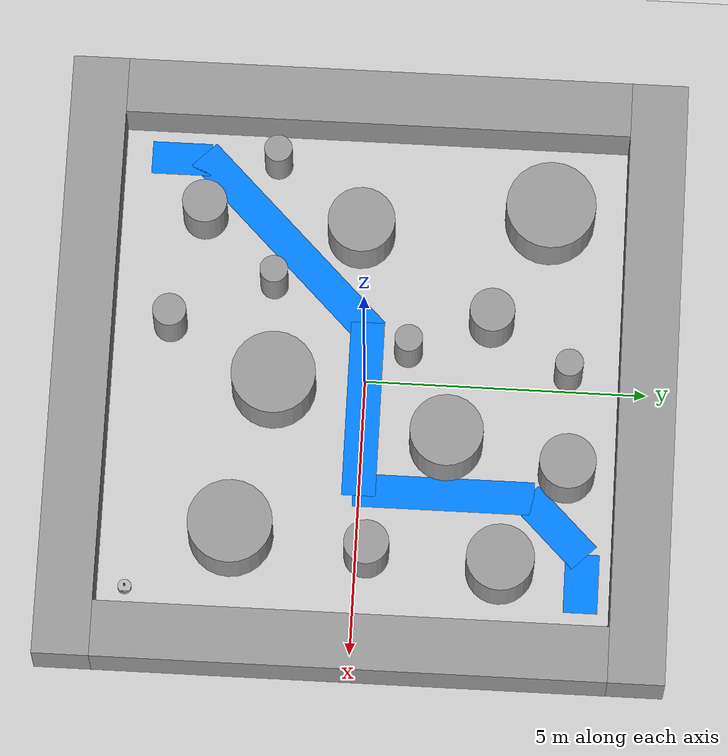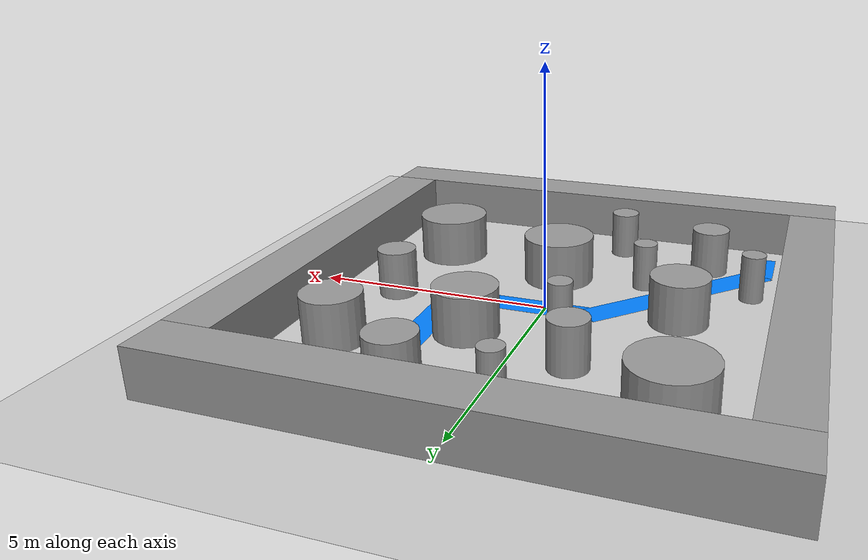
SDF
<sdf version="1.7">
 <world name="default">
  <light name="sun" type="directional">
   <pose>0 0 10 0 -0 0</pose>
   <diffuse>0.8 0.8 0.8 1</diffuse>
   <specular>0.2 0.2 0.2 1</specular>
   <attenuation>
    <range>1000</range>
    <constant>0.9</constant>
    <linear>0.01</linear>
    <quadratic>0.001</quadratic>
   </attenuation>
   <direction>-0.5 0.1 -0.9</direction>
   <spot><inner_angle>0</inner_angle><outer_angle>0</outer_angle><falloff>0</falloff></spot>
  </light>
  <model name="ground_plane">
   <static>1</static>
   <link name="link">
    <collision name="collision">
     <geometry><plane><normal>0 0 1</normal><size>100 100</size></plane></geometry>
     <surface>
      <contact><collide_bitmask>65535</collide_bitmask></contact>
      <friction><ode><mu>100</mu><mu2>50</mu2></ode></friction>
     </surface>
    </collision>
    <visual name="visual">
     <cast_shadows>0</cast_shadows>
     <geometry><plane><normal>0 0 1</normal><size>100 100</size></plane></geometry>
     <material>
      <script><uri>file://media/materials/scripts/gazebo.material</uri><name>Gazebo/Grey</name></script>
     </material>
    </visual>
   </link>
  </model>
  <model name="wall_north">
   <static>1</static>
   <pose>0 5 0.5 0 -0 0</pose>
   <link name="link">
    <collision name="collision"><geometry><box><size>11 1 1</size></box></geometry></collision>
    <visual name="visual">
     <geometry><box><size>11 1 1</size></box></geometry>
     <material>
      <script><uri>file://media/materials/scripts/gazebo.material</uri><name>Gazebo/Grey</name></script>
     </material>
    </visual>
   </link>
  </model>
  <model name="wall_south">
   <static>1</static>
   <pose>0 -5 0.5 0 -0 0</pose>
   <link name="link">
    <collision name="collision"><geometry><box><size>11 1 1</size></box></geometry></collision>
    <visual name="visual">
     <geometry><box><size>11 1 1</size></box></geometry>
     <material>
      <script><uri>file://media/materials/scripts/gazebo.material</uri><name>Gazebo/Grey</name></script>
     </material>
    </visual>
   </link>
  </model>
  <model name="wall_east">
   <static>1</static>
   <pose>5 0 0.5 0 -0 0</pose>
   <link name="link">
    <collision name="collision"><geometry><box><size>1 9 1</size></box></geometry></collision>
    <visual name="visual">
     <geometry><box><size>1 9 1</size></box></geometry>
     <material>
      <script><uri>file://media/materials/scripts/gazebo.material</uri><name>Gazebo/Grey</name></script>
     </material>
    </visual>
   </link>
  </model>
  <model name="wall_west">
   <static>1</static>
   <pose>-5 0 0.5 0 -0 0</pose>
   <link name="link">
    <collision name="collision"><geometry><box><size>1 9 1</size></box></geometry></collision>
    <visual name="visual">
     <geometry><box><size>1 9 1</size></box></geometry>
     <material>
      <script><uri>file://media/materials/scripts/gazebo.material</uri><name>Gazebo/Grey</name></script>
     </material>
    </visual>
   </link>
  </model>
  <model name="obstacle_4">
   <static>1</static>
   <pose>3.2 0.2 0.5 0 -0 0</pose>
   <link name="link">
    <visual name="visual">
     <geometry><cylinder><radius>0.4</radius><length>1</length></cylinder></geometry>
     <material>
      <script><uri>file://media/materials/scripts/gazebo.material</uri><name>Gazebo/Grey</name></script>
     </material>
    </visual>
    <collision name="collision">
     <geometry><cylinder><radius>0.4</radius><length>1</length></cylinder></geometry>
    </collision>
   </link>
  </model>
  <model name="obstacle_5">
   <static>1</static>
   <pose>0.2 -1.6 0.5 0 -0 0</pose>
   <link name="link">
    <visual name="visual">
     <geometry><cylinder><radius>0.75</radius><length>1</length></cylinder></geometry>
     <material>
      <script><uri>file://media/materials/scripts/gazebo.material</uri><name>Gazebo/Grey</name></script>
     </material>
    </visual>
    <collision name="collision">
     <geometry><cylinder><radius>0.75</radius><length>1</length></cylinder></geometry>
    </collision>
   </link>
  </model>
  <model name="obstacle_6">
   <static>1</static>
   <pose>-1.15 2.2 0.5 0 -0 0</pose>
   <link name="link">
    <visual name="visual">
     <geometry><cylinder><radius>0.4</radius><length>1</length></cylinder></geometry>
     <material>
      <script><uri>file://media/materials/scripts/gazebo.material</uri><name>Gazebo/Grey</name></script>
     </material>
    </visual>
    <collision name="collision">
     <geometry><cylinder><radius>0.4</radius><length>1</length></cylinder></geometry>
    </collision>
   </link>
  </model>
  <model name="obstacle_7">
   <static>1</static>
   <pose>-0.25 3.6 0.5 0 -0 0</pose>
   <link name="link">
    <visual name="visual">
     <geometry><cylinder><radius>0.25</radius><length>1</length></cylinder></geometry>
     <material>
      <script><uri>file://media/materials/scripts/gazebo.material</uri><name>Gazebo/Grey</name></script>
     </material>
    </visual>
    <collision name="collision">
     <geometry><cylinder><radius>0.25</radius><length>1</length></cylinder></geometry>
    </collision>
   </link>
  </model>
  <model name="obstacle_8">
   <static>1</static>
   <pose>-2.7 -0.2 0.5 0 -0 0</pose>
   <link name="link">
    <visual name="visual">
     <geometry><cylinder><radius>0.6</radius><length>1</length></cylinder></geometry>
     <material>
      <script><uri>file://media/materials/scripts/gazebo.material</uri><name>Gazebo/Grey</name></script>
     </material>
    </visual>
    <collision name="collision">
     <geometry><cylinder><radius>0.6</radius><length>1</length></cylinder></geometry>
    </collision>
   </link>
  </model>
  <model name="obstacle_9">
   <static>1</static>
   <pose>-0.85 -3.5 0.5 0 -0 0</pose>
   <link name="link">
    <visual name="visual">
     <geometry><cylinder><radius>0.3</radius><length>1</length></cylinder></geometry>
     <material>
      <script><uri>file://media/materials/scripts/gazebo.material</uri><name>Gazebo/Grey</name></script>
     </material>
    </visual>
    <collision name="collision">
     <geometry><cylinder><radius>0.3</radius><length>1</length></cylinder></geometry>
    </collision>
   </link>
  </model>
  <model name="obstacle_10">
   <static>1</static>
   <pose>1.1 1.5 0.5 0 -0 0</pose>
   <link name="link">
    <visual name="visual">
     <geometry><cylinder><radius>0.65</radius><length>1</length></cylinder></geometry>
     <material>
      <script><uri>file://media/materials/scripts/gazebo.material</uri><name>Gazebo/Grey</name></script>
     </material>
    </visual>
    <collision name="collision">
     <geometry><cylinder><radius>0.65</radius><length>1</length></cylinder></geometry>
    </collision>
   </link>
  </model>
  <model name="obstacle_11">
   <static>1</static>
   <pose>-2.9 -3 0.5 0 -0 0</pose>
   <link name="link">
    <visual name="visual">
     <geometry><cylinder><radius>0.4</radius><length>1</length></cylinder></geometry>
     <material>
      <script><uri>file://media/materials/scripts/gazebo.material</uri><name>Gazebo/Grey</name></script>
     </material>
    </visual>
    <collision name="collision">
     <geometry><cylinder><radius>0.4</radius><length>1</length></cylinder></geometry>
    </collision>
   </link>
  </model>
  <model name="obstacle_12">
   <static>1</static>
   <pose>2.95 -2.2 0.5 0 -0 0</pose>
   <link name="link">
    <visual name="visual">
     <geometry><cylinder><radius>0.75</radius><length>1</length></cylinder></geometry>
     <material>
      <script><uri>file://media/materials/scripts/gazebo.material</uri><name>Gazebo/Grey</name></script>
     </material>
    </visual>
    <collision name="collision">
     <geometry><cylinder><radius>0.75</radius><length>1</length></cylinder></geometry>
    </collision>
   </link>
  </model>
  <model name="obstacle_13">
   <static>1</static>
   <pose>-3.15 3.15 0.5 0 -0 0</pose>
   <link name="link">
    <visual name="visual">
     <geometry><cylinder><radius>0.8</radius><length>1</length></cylinder></geometry>
     <material>
      <script><uri>file://media/materials/scripts/gazebo.material</uri><name>Gazebo/Grey</name></script>
     </material>
    </visual>
    <collision name="collision">
     <geometry><cylinder><radius>0.8</radius><length>1</length></cylinder></geometry>
    </collision>
   </link>
  </model>
  <model name="obstacle_14">
   <static>1</static>
   <pose>-3.95 -1.75 0.5 0 -0 0</pose>
   <link name="link">
    <visual name="visual">
     <geometry><cylinder><radius>0.25</radius><length>1</length></cylinder></geometry>
     <material>
      <script><uri>file://media/materials/scripts/gazebo.material</uri><name>Gazebo/Grey</name></script>
     </material>
    </visual>
    <collision name="collision">
     <geometry><cylinder><radius>0.25</radius><length>1</length></cylinder></geometry>
    </collision>
   </link>
  </model>
  <model name="obstacle_15">
   <static>1</static>
   <pose>3.35 2.55 0.5 0 -0 0</pose>
   <link name="link">
    <visual name="visual">
     <geometry><cylinder><radius>0.6</radius><length>1</length></cylinder></geometry>
     <material>
      <script><uri>file://media/materials/scripts/gazebo.material</uri><name>Gazebo/Grey</name></script>
     </material>
    </visual>
    <collision name="collision">
     <geometry><cylinder><radius>0.6</radius><length>1</length></cylinder></geometry>
    </collision>
   </link>
  </model>
  <model name="obstacle_16">
   <static>1</static>
   <pose>-1.7 -1.7 0.5 0 -0 0</pose>
   <link name="link">
    <visual name="visual">
     <geometry><cylinder><radius>0.25</radius><length>1</length></cylinder></geometry>
     <material>
      <script><uri>file://media/materials/scripts/gazebo.material</uri><name>Gazebo/Grey</name></script>
     </material>
    </visual>
    <collision name="collision">
     <geometry><cylinder><radius>0.25</radius><length>1</length></cylinder></geometry>
    </collision>
   </link>
  </model>
  <model name="obstacle_17">
   <static>1</static>
   <pose>-0.55 0.75 0.5 0 -0 0</pose>
   <link name="link">
    <visual name="visual">
     <geometry><cylinder><radius>0.25</radius><length>1</length></cylinder></geometry>
     <material>
      <script><uri>file://media/materials/scripts/gazebo.material</uri><name>Gazebo/Grey</name></script>
     </material>
    </visual>
    <collision name="collision">
     <geometry><cylinder><radius>0.25</radius><length>1</length></cylinder></geometry>
    </collision>
   </link>
  </model>
  <model name="obstacle_18">
   <static>1</static>
   <pose>1.55 3.65 0.5 0 -0 0</pose>
   <link name="link">
    <visual name="visual">
     <geometry><cylinder><radius>0.5</radius><length>1</length></cylinder></geometry>
     <material>
      <script><uri>file://media/materials/scripts/gazebo.material</uri><name>Gazebo/Grey</name></script>
     </material>
    </visual>
    <collision name="collision">
     <geometry><cylinder><radius>0.5</radius><length>1</length></cylinder></geometry>
    </collision>
   </link>
  </model>
  <gravity>0 0 -9.8</gravity>
  <magnetic_field>6e-06 2.3e-05 -4.2e-05</magnetic_field>
  <atmosphere type="adiabatic"/>
  <physics type="ode">
   <max_step_size>0.001</max_step_size>
   <real_time_factor>1</real_time_factor>
   <real_time_update_rate>1000</real_time_update_rate>
  </physics>
  <scene><ambient>0.4 0.4 0.4 1</ambient><background>0.7 0.7 0.7 1</background><shadows>1</shadows></scene>
  <audio><device>default</device></audio>
  <spherical_coordinates>
   <surface_model>EARTH_WGS84</surface_model>
   <latitude_deg>0</latitude_deg>
   <longitude_deg>0</longitude_deg>
   <elevation>0</elevation>
   <heading_deg>0</heading_deg>
  </spherical_coordinates>
  <model name="fishbot">
   <link name="base_footprint">
    <inertial>
     <pose>0.000926 0 0.095565 0 -0 0</pose>
     <mass>1.08</mass>
     <inertia>
      <ixx>0.00465223</ixx>
      <ixy>0</ixy>
      <ixz>-7.04352e-05</ixz>
      <iyy>0.0048713</iyy>
      <iyz>0</iyz>
      <izz>0.00524496</izz>
     </inertia>
    </inertial>
    <collision name="base_footprint_fixed_joint_lump__base_link_collision">
     <pose>0 0 0.091 0 -0 0</pose>
     <geometry><cylinder><length>0.12</length><radius>0.12</radius></cylinder></geometry>
    </collision>
    <collision name="base_footprint_fixed_joint_lump__back_caster_link_collision_1">
     <pose>-0.08 0 0.015 0 -0 0</pose>
     <geometry><sphere><radius>0.016</radius></sphere></geometry>
     <surface>
      <contact><ode><kp>1e+09</kp><kd>1</kd></ode></contact>
      <friction><ode><mu>0</mu><mu2>0</mu2></ode></friction>
     </surface>
    </collision>
    <collision name="base_footprint_fixed_joint_lump__camera_link_collision_2">
     <pose>0.1 0 0.166 0 -0 0</pose>
     <geometry><box><size>0.02 0.1 0.02</size></box></geometry>
    </collision>
    <collision name="base_footprint_fixed_joint_lump__front_caster_link_collision_3">
     <pose>0.08 0 0.015 0 -0 0</pose>
     <geometry><sphere><radius>0.016</radius></sphere></geometry>
     <surface>
      <contact><ode><kp>1e+09</kp><kd>1</kd></ode></contact>
      <friction><ode><mu>0</mu><mu2>0</mu2></ode></friction>
     </surface>
    </collision>
    <collision name="base_footprint_fixed_joint_lump__imu_link_collision_4">
     <pose>0 0 0.111 0 -0 0</pose>
     <geometry><box><size>0.02 0.02 0.02</size></box></geometry>
    </collision>
    <collision name="base_footprint_fixed_joint_lump__laser_cylinder_link_collision_5">
     <pose>0 0 0.191 0 -0 0</pose>
     <geometry><cylinder><length>0.1</length><radius>0.01</radius></cylinder></geometry>
    </collision>
    <collision name="base_footprint_fixed_joint_lump__laser_link_collision_6">
     <pose>0 0 0.241 0 -0 0</pose>
     <geometry><cylinder><length>0.02</length><radius>0.02</radius></cylinder></geometry>
    </collision>
    <visual name="base_footprint_fixed_joint_lump__base_link_visual">
     <pose>0 0 0.091 0 -0 0</pose>
     <geometry><cylinder><length>0.12</length><radius>0.12</radius></cylinder></geometry>
    </visual>
    <visual name="base_footprint_fixed_joint_lump__back_caster_link_visual_1">
     <pose>-0.08 0 0.015 0 -0 0</pose>
     <geometry><sphere><radius>0.016</radius></sphere></geometry>
    </visual>
    <visual name="base_footprint_fixed_joint_lump__camera_link_visual_2">
     <pose>0.1 0 0.166 0 -0 0</pose>
     <geometry><box><size>0.02 0.1 0.02</size></box></geometry>
    </visual>
    <visual name="base_footprint_fixed_joint_lump__front_caster_link_visual_3">
     <pose>0.08 0 0.015 0 -0 0</pose>
     <geometry><sphere><radius>0.016</radius></sphere></geometry>
    </visual>
    <visual name="base_footprint_fixed_joint_lump__imu_link_visual_4">
     <pose>0 0 0.111 0 -0 0</pose>
     <geometry><box><size>0.02 0.02 0.02</size></box></geometry>
    </visual>
    <visual name="base_footprint_fixed_joint_lump__laser_cylinder_link_visual_5">
     <pose>0 0 0.191 0 -0 0</pose>
     <geometry><cylinder><length>0.1</length><radius>0.01</radius></cylinder></geometry>
     <material>
      <script><name>Gazebo/Black</name><uri>file://media/materials/scripts/gazebo.material</uri></script>
     </material>
    </visual>
    <visual name="base_footprint_fixed_joint_lump__laser_link_visual_6">
     <pose>0 0 0.241 0 -0 0</pose>
     <geometry><cylinder><length>0.02</length><radius>0.02</radius></cylinder></geometry>
     <material>
      <script><name>Gazebo/Black</name><uri>file://media/materials/scripts/gazebo.material</uri></script>
     </material>
    </visual>
    <sensor name="camera_sensor" type="depth">
     <plugin name="depth_camera" filename="libgazebo_ros_camera.so">
      <ros>
       <namespace>/</namespace>
       <remapping>~/image_raw:=camera/image_raw</remapping>
       <remapping>~/image_depth:=camera/image_depth</remapping>
       <remapping>~/camera_info:=camera/camera_info</remapping>
       <remapping>~/camera_info_depth:=camera/camera_info_depth</remapping>
       <remapping>~/points:=camera/points</remapping>
      </ros>
      <frame_name>camera_optical_link</frame_name>
     </plugin>
     <always_on>1</always_on>
     <visualize>1</visualize>
     <update_rate>10</update_rate>
     <camera name="camera">
      <horizontal_fov>1.50098</horizontal_fov>
      <image><width>800</width><height>600</height><format>R8G8B8</format></image>
      <distortion><k1>0</k1><k2>0</k2><k3>0</k3><p1>0</p1><p2>0</p2><center>0.5 0.5</center></distortion>
      <clip><near>0.1</near><far>100</far></clip>
     </camera>
     <pose>0.1 0 0.166 0 -0 0</pose>
    </sensor>
    <sensor name="imu_sensor" type="imu">
     <plugin name="imu_plugin" filename="libgazebo_ros_imu_sensor.so">
      <ros><namespace>/</namespace><remapping>~/out:=imu</remapping></ros>
      <initial_orientation_as_reference>0</initial_orientation_as_reference>
     </plugin>
     <update_rate>100</update_rate>
     <always_on>1</always_on>
     <imu>
      <angular_velocity>
       <x>
        <noise type="gaussian">
         <mean>0</mean>
         <stddev>0.0002</stddev>
         <bias_mean>7.5e-06</bias_mean>
         <bias_stddev>8e-07</bias_stddev>
        </noise>
       </x>
       <y>
        <noise type="gaussian">
         <mean>0</mean>
         <stddev>0.0002</stddev>
         <bias_mean>7.5e-06</bias_mean>
         <bias_stddev>8e-07</bias_stddev>
        </noise>
       </y>
       <z>
        <noise type="gaussian">
         <mean>0</mean>
         <stddev>0.0002</stddev>
         <bias_mean>7.5e-06</bias_mean>
         <bias_stddev>8e-07</bias_stddev>
        </noise>
       </z>
      </angular_velocity>
      <linear_acceleration>
       <x>
        <noise type="gaussian">
         <mean>0</mean>
         <stddev>0.017</stddev>
         <bias_mean>0.1</bias_mean>
         <bias_stddev>0.001</bias_stddev>
        </noise>
       </x>
       <y>
        <noise type="gaussian">
         <mean>0</mean>
         <stddev>0.017</stddev>
         <bias_mean>0.1</bias_mean>
         <bias_stddev>0.001</bias_stddev>
        </noise>
       </y>
       <z>
        <noise type="gaussian">
         <mean>0</mean>
         <stddev>0.017</stddev>
         <bias_mean>0.1</bias_mean>
         <bias_stddev>0.001</bias_stddev>
        </noise>
       </z>
      </linear_acceleration>
     </imu>
     <pose>0 0 0.111 0 -0 0</pose>
    </sensor>
    <sensor name="laserscan" type="ray">
     <plugin name="laserscan" filename="libgazebo_ros_ray_sensor.so">
      <ros><namespace>/</namespace><remapping>~/out:=scan</remapping></ros>
      <output_type>sensor_msgs/LaserScan</output_type>
      <frame_name>laser_link</frame_name>
     </plugin>
     <always_on>1</always_on>
     <visualize>1</visualize>
     <update_rate>10</update_rate>
     <ray>
      <scan>
       <horizontal>
        <samples>360</samples>
        <resolution>1</resolution>
        <min_angle>0</min_angle>
        <max_angle>6.28</max_angle>
       </horizontal>
       <vertical><samples>1</samples><min_angle>0</min_angle><max_angle>0</max_angle></vertical>
      </scan>
      <range><min>0.12</min><max>8</max><resolution>0.015</resolution></range>
      <noise><type>gaussian</type><mean>0</mean><stddev>0.003</stddev></noise>
     </ray>
     <pose>0 0 0.241 0 -0 0</pose>
    </sensor>
   </link>
   <joint name="left_wheel_joint" type="revolute">
    <pose relative_to="base_footprint">0 0.1 0.031 0 -0 0</pose>
    <parent>base_footprint</parent>
    <child>left_wheel_link</child>
    <axis>
     <xyz>0 1 0</xyz>
     <limit><lower>-1e+16</lower><upper>1e+16</upper></limit>
     <dynamics><spring_reference>0</spring_reference><spring_stiffness>0</spring_stiffness></dynamics>
    </axis>
   </joint>
   <link name="left_wheel_link">
    <pose relative_to="left_wheel_joint">0 0 0 0 -0 0</pose>
    <inertial>
     <mass>0.1</mass>
     <inertia>
      <ixx>3.89333e-05</ixx>
      <ixy>0</ixy>
      <ixz>0</ixz>
      <iyy>3.89333e-05</iyy>
      <iyz>0</iyz>
      <izz>5.12e-05</izz>
     </inertia>
    </inertial>
    <collision name="left_wheel_link_collision">
     <pose>0 0 0 1.57079 -0 0</pose>
     <geometry><cylinder><length>0.04</length><radius>0.032</radius></cylinder></geometry>
     <surface>
      <contact><ode><kp>1e+09</kp><kd>1</kd></ode></contact>
      <friction><ode><mu>20</mu><mu2>20</mu2></ode></friction>
     </surface>
    </collision>
    <visual name="left_wheel_link_visual">
     <pose>0 0 0 1.57079 -0 0</pose>
     <geometry><cylinder><length>0.04</length><radius>0.032</radius></cylinder></geometry>
    </visual>
   </link>
   <joint name="right_wheel_joint" type="revolute">
    <pose relative_to="base_footprint">0 -0.1 0.031 0 -0 0</pose>
    <parent>base_footprint</parent>
    <child>right_wheel_link</child>
    <axis>
     <xyz>0 1 0</xyz>
     <limit><lower>-1e+16</lower><upper>1e+16</upper></limit>
     <dynamics><spring_reference>0</spring_reference><spring_stiffness>0</spring_stiffness></dynamics>
    </axis>
   </joint>
   <link name="right_wheel_link">
    <pose relative_to="right_wheel_joint">0 0 0 0 -0 0</pose>
    <inertial>
     <mass>0.1</mass>
     <inertia>
      <ixx>3.89333e-05</ixx>
      <ixy>0</ixy>
      <ixz>0</ixz>
      <iyy>3.89333e-05</iyy>
      <iyz>0</iyz>
      <izz>5.12e-05</izz>
     </inertia>
    </inertial>
    <collision name="right_wheel_link_collision">
     <pose>0 0 0 1.57079 -0 0</pose>
     <geometry><cylinder><length>0.04</length><radius>0.032</radius></cylinder></geometry>
     <surface>
      <contact><ode><kp>1e+09</kp><kd>1</kd></ode></contact>
      <friction><ode><mu>20</mu><mu2>20</mu2></ode></friction>
     </surface>
    </collision>
    <visual name="right_wheel_link_visual">
     <pose>0 0 0 1.57079 -0 0</pose>
     <geometry><cylinder><length>0.04</length><radius>0.032</radius></cylinder></geometry>
    </visual>
   </link>
   <static>0</static>
   <plugin name="gazebo_ros2_control" filename="libgazebo_ros2_control.so">
    <parameters>/home/azf/sim_ws/simulation_ws/install/fishbot_description/share/fishbot_description/config/fishbot_ros2_controller.yaml</parameters>
    <ros>
     <remapping>/fishbot_diff_drive_controller/cmd_vel_unstamped:=/cmd_vel</remapping>
     <remapping>/fishbot_diff_drive_controller/odom:=/odom</remapping>
    </ros>
   </plugin>
   <pose>4.00044 -4.00589 0.001 1e-06 0 -0.001996</pose>
  </model>
  <model name="painted_floor_segment_0">
   <static>1</static>
   <pose>-4 -3.5 0.0002 0 -0 1.5708</pose>
   <link name="link">
    <visual name="base_paint">
     <geometry><box><size>1.068 0.6 0.0001</size></box></geometry>
     <material>
      <ambient>0 0.5 1 1</ambient>
      <diffuse>0 0.5 1 1</diffuse>
      <specular>0.1 0.1 0.1 1</specular>
      <emissive>0 0.1 0.2 0</emissive>
     </material>
    </visual>
   </link>
  </model>
  <model name="painted_floor_segment_1">
   <static>1</static>
   <pose>-2.5 -1.5 0.0002 0 -0 0.785398</pose>
   <link name="link">
    <visual name="base_paint">
     <geometry><box><size>4.53114 0.6 0.0001</size></box></geometry>
     <material>
      <ambient>0 0.5 1 1</ambient>
      <diffuse>0 0.5 1 1</diffuse>
      <specular>0.1 0.1 0.1 1</specular>
      <emissive>0 0.1 0.2 0</emissive>
     </material>
    </visual>
   </link>
  </model>
  <model name="painted_floor_segment_2">
   <static>1</static>
   <pose>0.5 0 0.0002 0 -0 0</pose>
   <link name="link">
    <visual name="base_paint">
     <geometry><box><size>3.204 0.6 0.0001</size></box></geometry>
     <material>
      <ambient>0 0.5 1 1</ambient>
      <diffuse>0 0.5 1 1</diffuse>
      <specular>0.1 0.1 0.1 1</specular>
      <emissive>0 0.1 0.2 0</emissive>
     </material>
    </visual>
   </link>
  </model>
  <model name="painted_floor_segment_3">
   <static>1</static>
   <pose>2 1.5 0.0002 0 -0 1.5708</pose>
   <link name="link">
    <visual name="base_paint">
     <geometry><box><size>3.204 0.6 0.0001</size></box></geometry>
     <material>
      <ambient>0 0.5 1 1</ambient>
      <diffuse>0 0.5 1 1</diffuse>
      <specular>0.1 0.1 0.1 1</specular>
      <emissive>0 0.1 0.2 0</emissive>
     </material>
    </visual>
   </link>
  </model>
  <model name="painted_floor_segment_4">
   <static>1</static>
   <pose>2.5 3.5 0.0002 0 -0 0.785398</pose>
   <link name="link">
    <visual name="base_paint">
     <geometry><box><size>1.51038 0.6 0.0001</size></box></geometry>
     <material>
      <ambient>0 0.5 1 1</ambient>
      <diffuse>0 0.5 1 1</diffuse>
      <specular>0.1 0.1 0.1 1</specular>
      <emissive>0 0.1 0.2 0</emissive>
     </material>
    </visual>
   </link>
  </model>
  <model name="painted_floor_segment_5">
   <static>1</static>
   <pose>3.5 4 0.0002 0 -0 0</pose>
   <link name="link">
    <visual name="base_paint">
     <geometry><box><size>1.068 0.6 0.0001</size></box></geometry>
     <material>
      <ambient>0 0.5 1 1</ambient>
      <diffuse>0 0.5 1 1</diffuse>
      <specular>0.1 0.1 0.1 1</specular>
      <emissive>0 0.1 0.2 0</emissive>
     </material>
    </visual>
   </link>
  </model>
 </world>
</sdf>
